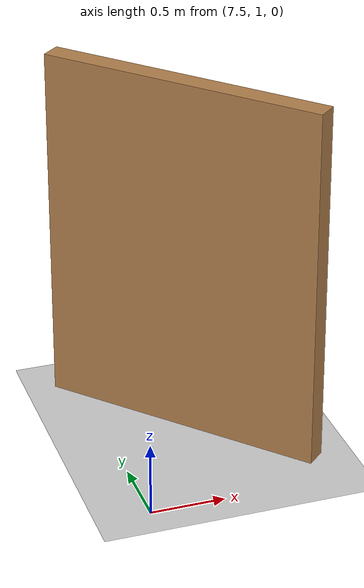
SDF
<sdf version="1.6">
 <world name="default">
  <model name="ground_plane">
   <static>1</static>
   <link name="link">
    <collision name="collision">
     <geometry><plane><normal>0 0 1</normal><size>100 100</size></plane></geometry>
     <surface><friction><ode><mu>100</mu><mu2>50</mu2></ode></friction></surface>
    </collision>
    <visual name="visual">
     <cast_shadows>0</cast_shadows>
     <geometry><plane><normal>0 0 1</normal><size>100 100</size></plane></geometry>
     <material>
      <script><uri>file://media/materials/scripts/gazebo.material</uri><name>Gazebo/Grey</name></script>
     </material>
    </visual>
   </link>
  </model>
  <model name="test_maze">
   <link name="Wall_96_clone_1_clone_clone_0">
    <pose>7.081 1.77412 0 0 -0 2.3</pose>
    <inertial>
     <mass>1</mass>
     <inertia><ixx>1</ixx><ixy>0</ixy><ixz>0</ixz><iyy>1</iyy><iyz>0</iyz><izz>1</izz></inertia>
    </inertial>
    <visual name="Wall_96_Visual">
     <pose>0 0 1.25 0 -0 0</pose>
     <geometry><box><size>2.0055 0.15 2.5</size></box></geometry>
     <material>
      <script><uri>file://media/materials/scripts/gazebo.material</uri><name>Gazebo/Wood</name></script>
      <ambient>1 1 1 1</ambient>
      <shader type="pixel"><normal_map>__default__</normal_map></shader>
      <diffuse>1 1 1 1</diffuse>
      <specular>0.2 0.2 0.2 1</specular>
      <emissive>0 0 0 1</emissive>
     </material>
     <meta><layer>0</layer></meta>
    </visual>
    <collision name="Wall_96_Collision">
     <pose>0 0 1.25 0 -0 0</pose>
     <geometry><box><size>2.0055 0.15 2.5</size></box></geometry>
     <surface>
      <friction>
       <ode><mu>1</mu><mu2>1</mu2><fdir1>0 0 0</fdir1><slip1>0</slip1><slip2>0</slip2></ode>
       <torsional>
        <coefficient>1</coefficient>
        <patch_radius>0</patch_radius>
        <surface_radius>0</surface_radius>
        <use_patch_radius>1</use_patch_radius>
        <ode><slip>0</slip></ode>
       </torsional>
      </friction>
      <bounce><restitution_coefficient>0</restitution_coefficient><threshold>1e+06</threshold></bounce>
      <contact>
       <collide_without_contact>0</collide_without_contact>
       <collide_without_contact_bitmask>1</collide_without_contact_bitmask>
       <collide_bitmask>1</collide_bitmask>
       <ode>
        <soft_cfm>0</soft_cfm>
        <soft_erp>0.2</soft_erp>
        <kp>1e+13</kp>
        <kd>1</kd>
        <max_vel>0.01</max_vel>
        <min_depth>0</min_depth>
       </ode>
       <bullet>
        <split_impulse>1</split_impulse>
        <split_impulse_penetration_threshold>-0.01</split_impulse_penetration_threshold>
        <soft_cfm>0</soft_cfm>
        <soft_erp>0.2</soft_erp>
        <kp>1e+13</kp>
        <kd>1</kd>
       </bullet>
      </contact>
     </surface>
    </collision>
   </link>
   <static>1</static>
   <pose>0.982774 0.2292 0 0 -0 0</pose>
  </model>
 </world>
</sdf>
